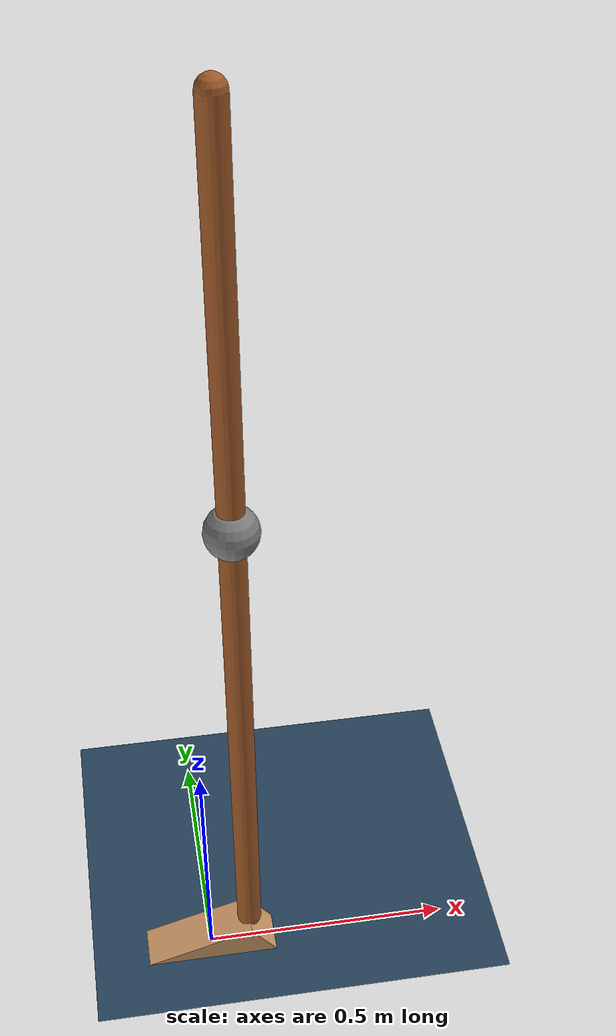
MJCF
<mujoco model="initial_humanoid">

  <option gravity="0 0 -9.81">

    <flag sensornoise="disable" />
  </option>

  <visual>
    <map zfar="30" />

    <rgba haze="0.15 0.25 0.35 1" />

  </visual>

  <statistic center="0 0 0.7" />

  <asset>

    <texture type="skybox" builtin="gradient" rgb1=".3 .5 .7" rgb2="0 0 0" width="32" height="512" />

    <texture name="body" type="cube" builtin="flat" mark="cross" width="128" height="128" rgb1="0.8 0.6 0.4" rgb2="0.8 0.6 0.4" markrgb="1 1 1" random="0.01" />

    <material name="body" texture="body" texuniform="true" rgba="0.8 0.6 .4 1" />

    <texture name="grid" type="2d" builtin="checker" width="512" height="512" rgb1=".1 .2 .3" rgb2=".2 .3 .4" />

    <material name="grid" texture="grid" texrepeat="1 1" texuniform="true" reflectance=".2" />

    <mesh name="foot_mesh" vertex="-0.13528 -0.045 0   -0.13528 0.045 0   0.13528 -0.045 0   0.13528 0.045 0  -0.0838736 -0.045 0.06942 -0.0838736 0.045 0.06942" />

  </asset>

  <default>

    <default class="general_geom">
      <motor ctrlrange="-0.5 0.5" ctrllimited="true" />

      <geom material="body" type="capsule" condim="1" friction="0.99 0.99 0.99" solimp=".9 .99 .003" group="1" />

      <default class="long_link">
        <geom fromto="0 0 0.1 0 0 0" size="0.025" />
      </default>

    </default>
  </default>

	<worldbody>

      <geom name="ground" size="0 0 .05" friction="0.99 0.99 0.99" type="plane" material="grid" condim="3" solimp=".9 .99 .003" />

      <light name="spotlight" mode="targetbodycom" target="foot" diffuse=".8 .8 .8" specular="0.3 0.3 0.3" pos="0 -6 4" cutoff="30" />

        <body name="foot" pos="0. 0 0" quat="0 0 0 1">

          <joint type="hinge" name="rotation_dof" axis="0 1 0" pos="-0.0838736 0 0.06942" />
          <joint type="slide" name="joint_slide_x" axis="1 0 0" pos="-0.0838736 0 0.035" />
          <joint type="slide" name="joint_slide_z" axis="0 0 1" pos="-0.0838736 0 0.035" />

          <site name="front_foot_site" type="cylinder" size="0.075" rgba="0.5 0.5 0.5 0" fromto="-0.13528 0 0.0 -0.13528 0 0.1" />
          <site name="back_foot_site" type="cylinder" size="0.075" rgba="0.5 0.5 0.5 0" fromto="0.13528 0 0.0 0.13528 0 0.1" />

          <geom type="mesh" mesh="foot_mesh" name="foot_geom" friction=".99 .99 .99" rgba="0.8 0.6 0.4 1" />

            <body name="long_link_body" pos="-0.0838736 0 0.06942">

              <joint type="hinge" name="ankle_hinge" axis="0 1 0" damping="2.5" pos="0 0 0" />
              <geom name="long_link_geom" class="long_link" solref="0.015 1" solimp=".99 .99 .001" mass="0" fromto="0 0 1.78 0 0 0" />
              <geom name="m_body" type="sphere" size="0.05" mass="77.68" pos="0 0 1.0234999999999999" />

            </body>

        </body>

	</worldbody>

  <contact>

    <pair name="foot_ground_friction" geom1="foot_geom" geom2="ground" solref="0.015 1" solimp="0.99 .99 .003" friction="0.99 0.99 0.99 0.99 0.99" />
    <pair name="longlink_ground_friction" geom1="long_link_geom" geom2="ground" solref="0.015 1" solimp="0.99 .99 .003" friction=".99 .99 .99" />
  </contact>

	<actuator>
      <motor joint="ankle_hinge" name="ankle_actuator" gear="15" ctrlrange="-10 10" />

	</actuator>

	<sensor>
      <jointpos joint="ankle_hinge" />
      <touch site="front_foot_site" />
      <touch site="back_foot_site" />
	</sensor>

</mujoco>
